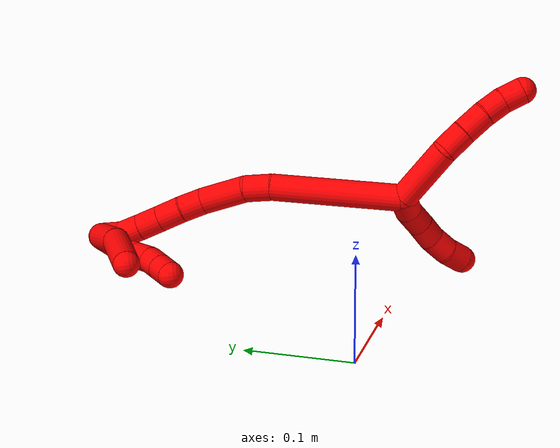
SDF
<sdf version="1.7">
 <world name="default">
  <model name="2">
   <static>0</static>
   <link name="2">
    <collision name="collision-cylinder-e_1_2_8">
     <pose>-0.018435 -0.007077 -0.021804 2.82774 -0.677282 -2.29714</pose>
     <geometry><cylinder><radius>0.0125</radius><length>0.058835</length></cylinder></geometry>
     <surface>
      <friction><ode><mu>1.16</mu><mu2>1.16</mu2><slip1>0</slip1><slip2>0</slip2></ode></friction>
      <contact><ode><kp>1e+06</kp><kd>1</kd><max_vel>0</max_vel><min_depth>0.001</min_depth></ode></contact>
     </surface>
    </collision>
    <visual name="visual-cylinder-e_1_2_8">
     <pose>-0.018435 -0.007077 -0.021804 2.82774 -0.677282 -2.29714</pose>
     <geometry><cylinder><radius>0.0125</radius><length>0.058835</length></cylinder></geometry>
     <material><ambient>1 0 0 1</ambient></material>
    </visual>
    <collision name="collision-cylinder-e_2_8_9">
     <pose>-0.041459 -0.019811 -0.05344 2.61952 -0.384449 -1.2593</pose>
     <geometry><cylinder><radius>0.0125</radius><length>0.02447</length></cylinder></geometry>
     <surface>
      <friction><ode><mu>1.16</mu><mu2>1.16</mu2><slip1>0</slip1><slip2>0</slip2></ode></friction>
      <contact><ode><kp>1e+06</kp><kd>1</kd><max_vel>0</max_vel><min_depth>0.001</min_depth></ode></contact>
     </surface>
    </collision>
    <visual name="visual-cylinder-e_2_8_9">
     <pose>-0.041459 -0.019811 -0.05344 2.61952 -0.384449 -1.2593</pose>
     <geometry><cylinder><radius>0.0125</radius><length>0.02447</length></cylinder></geometry>
     <material><ambient>1 0 0 1</ambient></material>
    </visual>
    <collision name="collision-cylinder-e_3_9_10">
     <pose>-0.050031 -0.031298 -0.073516 2.62412 -0.32586 -1.11158</pose>
     <geometry><cylinder><radius>0.0125</radius><length>0.024886</length></cylinder></geometry>
     <surface>
      <friction><ode><mu>1.16</mu><mu2>1.16</mu2><slip1>0</slip1><slip2>0</slip2></ode></friction>
      <contact><ode><kp>1e+06</kp><kd>1</kd><max_vel>0</max_vel><min_depth>0.001</min_depth></ode></contact>
     </surface>
    </collision>
    <visual name="visual-cylinder-e_3_9_10">
     <pose>-0.050031 -0.031298 -0.073516 2.62412 -0.32586 -1.11158</pose>
     <geometry><cylinder><radius>0.0125</radius><length>0.024886</length></cylinder></geometry>
     <material><ambient>1 0 0 1</ambient></material>
    </visual>
    <collision name="collision-cylinder-e_4_10_11">
     <pose>-0.056044 -0.042187 -0.09284 2.63338 -0.192871 -0.71309</pose>
     <geometry><cylinder><radius>0.0125</radius><length>0.021178</length></cylinder></geometry>
     <surface>
      <friction><ode><mu>1.16</mu><mu2>1.16</mu2><slip1>0</slip1><slip2>0</slip2></ode></friction>
      <contact><ode><kp>1e+06</kp><kd>1</kd><max_vel>0</max_vel><min_depth>0.001</min_depth></ode></contact>
     </surface>
    </collision>
    <visual name="visual-cylinder-e_4_10_11">
     <pose>-0.056044 -0.042187 -0.09284 2.63338 -0.192871 -0.71309</pose>
     <geometry><cylinder><radius>0.0125</radius><length>0.021178</length></cylinder></geometry>
     <material><ambient>1 0 0 1</ambient></material>
    </visual>
    <collision name="collision-cylinder-e_5_11_6">
     <pose>-0.060004 -0.049891 -0.111701 2.87729 -0.188178 -1.2347</pose>
     <geometry><cylinder><radius>0.0125</radius><length>0.020631</length></cylinder></geometry>
     <surface>
      <friction><ode><mu>1.16</mu><mu2>1.16</mu2><slip1>0</slip1><slip2>0</slip2></ode></friction>
      <contact><ode><kp>1e+06</kp><kd>1</kd><max_vel>0</max_vel><min_depth>0.001</min_depth></ode></contact>
     </surface>
    </collision>
    <visual name="visual-cylinder-e_5_11_6">
     <pose>-0.060004 -0.049891 -0.111701 2.87729 -0.188178 -1.2347</pose>
     <geometry><cylinder><radius>0.0125</radius><length>0.020631</length></cylinder></geometry>
     <material><ambient>1 0 0 1</ambient></material>
    </visual>
    <collision name="collision-cylinder-e_1_2_12">
     <pose>0.009802 -0.001395 -0.001402 2.35848 1.37171 2.20712</pose>
     <geometry><cylinder><radius>0.0125</radius><length>0.02</length></cylinder></geometry>
     <surface>
      <friction><ode><mu>1.16</mu><mu2>1.16</mu2><slip1>0</slip1><slip2>0</slip2></ode></friction>
      <contact><ode><kp>1e+06</kp><kd>1</kd><max_vel>0</max_vel><min_depth>0.001</min_depth></ode></contact>
     </surface>
    </collision>
    <visual name="visual-cylinder-e_1_2_12">
     <pose>0.009802 -0.001395 -0.001402 2.35848 1.37171 2.20712</pose>
     <geometry><cylinder><radius>0.0125</radius><length>0.02</length></cylinder></geometry>
     <material><ambient>1 0 0 1</ambient></material>
    </visual>
    <collision name="collision-cylinder-e_2_12_13">
     <pose>0.028669 -0.002758 -0.007028 -3.13391 1.13461 -3.12954</pose>
     <geometry><cylinder><radius>0.0125</radius><length>0.02</length></cylinder></geometry>
     <surface>
      <friction><ode><mu>1.16</mu><mu2>1.16</mu2><slip1>0</slip1><slip2>0</slip2></ode></friction>
      <contact><ode><kp>1e+06</kp><kd>1</kd><max_vel>0</max_vel><min_depth>0.001</min_depth></ode></contact>
     </surface>
    </collision>
    <visual name="visual-cylinder-e_2_12_13">
     <pose>0.028669 -0.002758 -0.007028 -3.13391 1.13461 -3.12954</pose>
     <geometry><cylinder><radius>0.0125</radius><length>0.02</length></cylinder></geometry>
     <material><ambient>1 0 0 1</ambient></material>
    </visual>
    <collision name="collision-cylinder-e_3_13_14">
     <pose>0.046821 -0.002026 -0.015365 -2.97312 1.14046 -2.87976</pose>
     <geometry><cylinder><radius>0.0125</radius><length>0.02</length></cylinder></geometry>
     <surface>
      <friction><ode><mu>1.16</mu><mu2>1.16</mu2><slip1>0</slip1><slip2>0</slip2></ode></friction>
      <contact><ode><kp>1e+06</kp><kd>1</kd><max_vel>0</max_vel><min_depth>0.001</min_depth></ode></contact>
     </surface>
    </collision>
    <visual name="visual-cylinder-e_3_13_14">
     <pose>0.046821 -0.002026 -0.015365 -2.97312 1.14046 -2.87976</pose>
     <geometry><cylinder><radius>0.0125</radius><length>0.02</length></cylinder></geometry>
     <material><ambient>1 0 0 1</ambient></material>
    </visual>
    <collision name="collision-cylinder-e_4_14_15">
     <pose>0.063945 -0.000127 -0.025307 -2.93863 0.933359 -2.74272</pose>
     <geometry><cylinder><radius>0.0125</radius><length>0.02</length></cylinder></geometry>
     <surface>
      <friction><ode><mu>1.16</mu><mu2>1.16</mu2><slip1>0</slip1><slip2>0</slip2></ode></friction>
      <contact><ode><kp>1e+06</kp><kd>1</kd><max_vel>0</max_vel><min_depth>0.001</min_depth></ode></contact>
     </surface>
    </collision>
    <visual name="visual-cylinder-e_4_14_15">
     <pose>0.063945 -0.000127 -0.025307 -2.93863 0.933359 -2.74272</pose>
     <geometry><cylinder><radius>0.0125</radius><length>0.02</length></cylinder></geometry>
     <material><ambient>1 0 0 1</ambient></material>
    </visual>
    <collision name="collision-cylinder-e_5_15_5">
     <pose>0.079567 0.000206 -0.037595 3.00818 0.861066 2.8527</pose>
     <geometry><cylinder><radius>0.0125</radius><length>0.02</length></cylinder></geometry>
     <surface>
      <friction><ode><mu>1.16</mu><mu2>1.16</mu2><slip1>0</slip1><slip2>0</slip2></ode></friction>
      <contact><ode><kp>1e+06</kp><kd>1</kd><max_vel>0</max_vel><min_depth>0.001</min_depth></ode></contact>
     </surface>
    </collision>
    <visual name="visual-cylinder-e_5_15_5">
     <pose>0.079567 0.000206 -0.037595 3.00818 0.861066 2.8527</pose>
     <geometry><cylinder><radius>0.0125</radius><length>0.02</length></cylinder></geometry>
     <material><ambient>1 0 0 1</ambient></material>
    </visual>
    <collision name="collision-cylinder-e_1_2_16">
     <pose>-0.003641 -0.016267 0.059428 0.26719 -0.05902 -0.007934</pose>
     <geometry><cylinder><radius>0.0125</radius><length>0.123443</length></cylinder></geometry>
     <surface>
      <friction><ode><mu>1.16</mu><mu2>1.16</mu2><slip1>0</slip1><slip2>0</slip2></ode></friction>
      <contact><ode><kp>1e+06</kp><kd>1</kd><max_vel>0</max_vel><min_depth>0.001</min_depth></ode></contact>
     </surface>
    </collision>
    <visual name="visual-cylinder-e_1_2_16">
     <pose>-0.003641 -0.016267 0.059428 0.26719 -0.05902 -0.007934</pose>
     <geometry><cylinder><radius>0.0125</radius><length>0.123443</length></cylinder></geometry>
     <material><ambient>1 0 0 1</ambient></material>
    </visual>
    <collision name="collision-cylinder-e_2_16_17">
     <pose>-0.006449 -0.035026 0.131321 0.197209 0.065394 0.006471</pose>
     <geometry><cylinder><radius>0.0125</radius><length>0.025478</length></cylinder></geometry>
     <surface>
      <friction><ode><mu>1.16</mu><mu2>1.16</mu2><slip1>0</slip1><slip2>0</slip2></ode></friction>
      <contact><ode><kp>1e+06</kp><kd>1</kd><max_vel>0</max_vel><min_depth>0.001</min_depth></ode></contact>
     </surface>
    </collision>
    <visual name="visual-cylinder-e_2_16_17">
     <pose>-0.006449 -0.035026 0.131321 0.197209 0.065394 0.006471</pose>
     <geometry><cylinder><radius>0.0125</radius><length>0.025478</length></cylinder></geometry>
     <material><ambient>1 0 0 1</ambient></material>
    </visual>
    <collision name="collision-cylinder-e_3_17_18">
     <pose>0.000947 -0.040795 0.164649 0.155878 0.301342 0.023713</pose>
     <geometry><cylinder><radius>0.0125</radius><length>0.044231</length></cylinder></geometry>
     <surface>
      <friction><ode><mu>1.16</mu><mu2>1.16</mu2><slip1>0</slip1><slip2>0</slip2></ode></friction>
      <contact><ode><kp>1e+06</kp><kd>1</kd><max_vel>0</max_vel><min_depth>0.001</min_depth></ode></contact>
     </surface>
    </collision>
    <visual name="visual-cylinder-e_3_17_18">
     <pose>0.000947 -0.040795 0.164649 0.155878 0.301342 0.023713</pose>
     <geometry><cylinder><radius>0.0125</radius><length>0.044231</length></cylinder></geometry>
     <material><ambient>1 0 0 1</ambient></material>
    </visual>
    <collision name="collision-cylinder-e_4_18_19">
     <pose>0.009792 -0.043071 0.196344 -0.092245 0.206663 -0.009573</pose>
     <geometry><cylinder><radius>0.0125</radius><length>0.022231</length></cylinder></geometry>
     <surface>
      <friction><ode><mu>1.16</mu><mu2>1.16</mu2><slip1>0</slip1><slip2>0</slip2></ode></friction>
      <contact><ode><kp>1e+06</kp><kd>1</kd><max_vel>0</max_vel><min_depth>0.001</min_depth></ode></contact>
     </surface>
    </collision>
    <visual name="visual-cylinder-e_4_18_19">
     <pose>0.009792 -0.043071 0.196344 -0.092245 0.206663 -0.009573</pose>
     <geometry><cylinder><radius>0.0125</radius><length>0.022231</length></cylinder></geometry>
     <material><ambient>1 0 0 1</ambient></material>
    </visual>
    <collision name="collision-cylinder-e_5_19_20">
     <pose>0.015513 -0.041541 0.218069 -0.048436 0.305565 -0.00746</pose>
     <geometry><cylinder><radius>0.0125</radius><length>0.022869</length></cylinder></geometry>
     <surface>
      <friction><ode><mu>1.16</mu><mu2>1.16</mu2><slip1>0</slip1><slip2>0</slip2></ode></friction>
      <contact><ode><kp>1e+06</kp><kd>1</kd><max_vel>0</max_vel><min_depth>0.001</min_depth></ode></contact>
     </surface>
    </collision>
    <visual name="visual-cylinder-e_5_19_20">
     <pose>0.015513 -0.041541 0.218069 -0.048436 0.305565 -0.00746</pose>
     <geometry><cylinder><radius>0.0125</radius><length>0.022869</length></cylinder></geometry>
     <material><ambient>1 0 0 1</ambient></material>
    </visual>
    <collision name="collision-cylinder-e_6_20_21">
     <pose>0.02209 -0.040535 0.23912 -0.04705 0.299186 -0.007093</pose>
     <geometry><cylinder><radius>0.0125</radius><length>0.021288</length></cylinder></geometry>
     <surface>
      <friction><ode><mu>1.16</mu><mu2>1.16</mu2><slip1>0</slip1><slip2>0</slip2></ode></friction>
      <contact><ode><kp>1e+06</kp><kd>1</kd><max_vel>0</max_vel><min_depth>0.001</min_depth></ode></contact>
     </surface>
    </collision>
    <visual name="visual-cylinder-e_6_20_21">
     <pose>0.02209 -0.040535 0.23912 -0.04705 0.299186 -0.007093</pose>
     <geometry><cylinder><radius>0.0125</radius><length>0.021288</length></cylinder></geometry>
     <material><ambient>1 0 0 1</ambient></material>
    </visual>
    <collision name="collision-cylinder-e_7_21_22">
     <pose>0.028105 -0.039814 0.258907 -0.025209 0.290456 -0.003687</pose>
     <geometry><cylinder><radius>0.0125</radius><length>0.020102</length></cylinder></geometry>
     <surface>
      <friction><ode><mu>1.16</mu><mu2>1.16</mu2><slip1>0</slip1><slip2>0</slip2></ode></friction>
      <contact><ode><kp>1e+06</kp><kd>1</kd><max_vel>0</max_vel><min_depth>0.001</min_depth></ode></contact>
     </surface>
    </collision>
    <visual name="visual-cylinder-e_7_21_22">
     <pose>0.028105 -0.039814 0.258907 -0.025209 0.290456 -0.003687</pose>
     <geometry><cylinder><radius>0.0125</radius><length>0.020102</length></cylinder></geometry>
     <material><ambient>1 0 0 1</ambient></material>
    </visual>
    <collision name="collision-cylinder-e_8_22_1">
     <pose>0.032125 -0.041835 0.278393 0.225728 0.112288 0.012741</pose>
     <geometry><cylinder><radius>0.0125</radius><length>0.020359</length></cylinder></geometry>
     <surface>
      <friction><ode><mu>1.16</mu><mu2>1.16</mu2><slip1>0</slip1><slip2>0</slip2></ode></friction>
      <contact><ode><kp>1e+06</kp><kd>1</kd><max_vel>0</max_vel><min_depth>0.001</min_depth></ode></contact>
     </surface>
    </collision>
    <visual name="visual-cylinder-e_8_22_1">
     <pose>0.032125 -0.041835 0.278393 0.225728 0.112288 0.012741</pose>
     <geometry><cylinder><radius>0.0125</radius><length>0.020359</length></cylinder></geometry>
     <material><ambient>1 0 0 1</ambient></material>
    </visual>
    <collision name="collision-cylinder-e_1_1_23">
     <pose>0.023566 -0.028596 0.27906 -2.106 -0.493723 0.833008</pose>
     <geometry><cylinder><radius>0.0125</radius><length>0.040935</length></cylinder></geometry>
     <surface>
      <friction><ode><mu>1.16</mu><mu2>1.16</mu2><slip1>0</slip1><slip2>0</slip2></ode></friction>
      <contact><ode><kp>1e+06</kp><kd>1</kd><max_vel>0</max_vel><min_depth>0.001</min_depth></ode></contact>
     </surface>
    </collision>
    <visual name="visual-cylinder-e_1_1_23">
     <pose>0.023566 -0.028596 0.27906 -2.106 -0.493723 0.833008</pose>
     <geometry><cylinder><radius>0.0125</radius><length>0.040935</length></cylinder></geometry>
     <material><ambient>1 0 0 1</ambient></material>
    </visual>
    <collision name="collision-cylinder-e_2_23_4">
     <pose>0.004286 0.013908 0.262705 -1.8301 -0.330363 0.426779</pose>
     <geometry><cylinder><radius>0.0125</radius><length>0.059065</length></cylinder></geometry>
     <surface>
      <friction><ode><mu>1.16</mu><mu2>1.16</mu2><slip1>0</slip1><slip2>0</slip2></ode></friction>
      <contact><ode><kp>1e+06</kp><kd>1</kd><max_vel>0</max_vel><min_depth>0.001</min_depth></ode></contact>
     </surface>
    </collision>
    <visual name="visual-cylinder-e_2_23_4">
     <pose>0.004286 0.013908 0.262705 -1.8301 -0.330363 0.426779</pose>
     <geometry><cylinder><radius>0.0125</radius><length>0.059065</length></cylinder></geometry>
     <material><ambient>1 0 0 1</ambient></material>
    </visual>
    <collision name="collision-cylinder-e_1_1_24">
     <pose>0.036882 -0.038873 0.280532 -2.54647 0.370086 -1.09604</pose>
     <geometry><cylinder><radius>0.0125</radius><length>0.02</length></cylinder></geometry>
     <surface>
      <friction><ode><mu>1.16</mu><mu2>1.16</mu2><slip1>0</slip1><slip2>0</slip2></ode></friction>
      <contact><ode><kp>1e+06</kp><kd>1</kd><max_vel>0</max_vel><min_depth>0.001</min_depth></ode></contact>
     </surface>
    </collision>
    <visual name="visual-cylinder-e_1_1_24">
     <pose>0.036882 -0.038873 0.280532 -2.54647 0.370086 -1.09604</pose>
     <geometry><cylinder><radius>0.0125</radius><length>0.02</length></cylinder></geometry>
     <material><ambient>1 0 0 1</ambient></material>
    </visual>
    <collision name="collision-cylinder-e_2_24_25">
     <pose>0.041156 -0.027203 0.265192 -2.43968 0.065709 -0.179062</pose>
     <geometry><cylinder><radius>0.0125</radius><length>0.02</length></cylinder></geometry>
     <surface>
      <friction><ode><mu>1.16</mu><mu2>1.16</mu2><slip1>0</slip1><slip2>0</slip2></ode></friction>
      <contact><ode><kp>1e+06</kp><kd>1</kd><max_vel>0</max_vel><min_depth>0.001</min_depth></ode></contact>
     </surface>
    </collision>
    <visual name="visual-cylinder-e_2_24_25">
     <pose>0.041156 -0.027203 0.265192 -2.43968 0.065709 -0.179062</pose>
     <geometry><cylinder><radius>0.0125</radius><length>0.02</length></cylinder></geometry>
     <material><ambient>1 0 0 1</ambient></material>
    </visual>
    <collision name="collision-cylinder-e_3_25_26">
     <pose>0.04027 -0.014383 0.250026 -2.43994 -0.154873 0.41785</pose>
     <geometry><cylinder><radius>0.0125</radius><length>0.02</length></cylinder></geometry>
     <surface>
      <friction><ode><mu>1.16</mu><mu2>1.16</mu2><slip1>0</slip1><slip2>0</slip2></ode></friction>
      <contact><ode><kp>1e+06</kp><kd>1</kd><max_vel>0</max_vel><min_depth>0.001</min_depth></ode></contact>
     </surface>
    </collision>
    <visual name="visual-cylinder-e_3_25_26">
     <pose>0.04027 -0.014383 0.250026 -2.43994 -0.154873 0.41785</pose>
     <geometry><cylinder><radius>0.0125</radius><length>0.02</length></cylinder></geometry>
     <material><ambient>1 0 0 1</ambient></material>
    </visual>
    <collision name="collision-cylinder-e_4_26_27">
     <pose>0.036813 0.000288 0.23723 -2.13518 -0.192637 0.347495</pose>
     <geometry><cylinder><radius>0.0125</radius><length>0.02</length></cylinder></geometry>
     <surface>
      <friction><ode><mu>1.16</mu><mu2>1.16</mu2><slip1>0</slip1><slip2>0</slip2></ode></friction>
      <contact><ode><kp>1e+06</kp><kd>1</kd><max_vel>0</max_vel><min_depth>0.001</min_depth></ode></contact>
     </surface>
    </collision>
    <visual name="visual-cylinder-e_4_26_27">
     <pose>0.036813 0.000288 0.23723 -2.13518 -0.192637 0.347495</pose>
     <geometry><cylinder><radius>0.0125</radius><length>0.02</length></cylinder></geometry>
     <material><ambient>1 0 0 1</ambient></material>
    </visual>
    <collision name="collision-cylinder-e_5_27_3">
     <pose>0.032579 0.016936 0.226999 -2.10838 -0.234123 0.408269</pose>
     <geometry><cylinder><radius>0.0125</radius><length>0.02</length></cylinder></geometry>
     <surface>
      <friction><ode><mu>1.16</mu><mu2>1.16</mu2><slip1>0</slip1><slip2>0</slip2></ode></friction>
      <contact><ode><kp>1e+06</kp><kd>1</kd><max_vel>0</max_vel><min_depth>0.001</min_depth></ode></contact>
     </surface>
    </collision>
    <visual name="visual-cylinder-e_5_27_3">
     <pose>0.032579 0.016936 0.226999 -2.10838 -0.234123 0.408269</pose>
     <geometry><cylinder><radius>0.0125</radius><length>0.02</length></cylinder></geometry>
     <material><ambient>1 0 0 1</ambient></material>
    </visual>
    <collision name="collision-sphere-3">
     <pose>0.030259 0.025291 0.222018 0 -0 0</pose>
     <geometry><sphere><radius>0.0125</radius></sphere></geometry>
     <surface>
      <friction><ode><mu>1.16</mu><mu2>1.16</mu2><slip1>0</slip1><slip2>0</slip2></ode></friction>
      <contact><ode><kp>1e+06</kp><kd>1</kd><max_vel>0</max_vel><min_depth>0.001</min_depth></ode></contact>
     </surface>
    </collision>
    <visual name="visual-sphere-3">
     <pose>0.030259 0.025291 0.222018 0 -0 0</pose>
     <geometry><sphere><radius>0.0125</radius></sphere></geometry>
     <material><ambient>1 0 0 1</ambient></material>
    </visual>
    <collision name="collision-sphere-27">
     <pose>0.034898 0.00858 0.23198 0 -0 0</pose>
     <geometry><sphere><radius>0.0125</radius></sphere></geometry>
     <surface>
      <friction><ode><mu>1.16</mu><mu2>1.16</mu2><slip1>0</slip1><slip2>0</slip2></ode></friction>
      <contact><ode><kp>1e+06</kp><kd>1</kd><max_vel>0</max_vel><min_depth>0.001</min_depth></ode></contact>
     </surface>
    </collision>
    <visual name="visual-sphere-27">
     <pose>0.034898 0.00858 0.23198 0 -0 0</pose>
     <geometry><sphere><radius>0.0125</radius></sphere></geometry>
     <material><ambient>1 0 0 1</ambient></material>
    </visual>
    <collision name="collision-sphere-26">
     <pose>0.038727 -0.008005 0.24248 0 -0 0</pose>
     <geometry><sphere><radius>0.0125</radius></sphere></geometry>
     <surface>
      <friction><ode><mu>1.16</mu><mu2>1.16</mu2><slip1>0</slip1><slip2>0</slip2></ode></friction>
      <contact><ode><kp>1e+06</kp><kd>1</kd><max_vel>0</max_vel><min_depth>0.001</min_depth></ode></contact>
     </surface>
    </collision>
    <visual name="visual-sphere-26">
     <pose>0.038727 -0.008005 0.24248 0 -0 0</pose>
     <geometry><sphere><radius>0.0125</radius></sphere></geometry>
     <material><ambient>1 0 0 1</ambient></material>
    </visual>
    <collision name="collision-sphere-25">
     <pose>0.041812 -0.02076 0.257572 0 -0 0</pose>
     <geometry><sphere><radius>0.0125</radius></sphere></geometry>
     <surface>
      <friction><ode><mu>1.16</mu><mu2>1.16</mu2><slip1>0</slip1><slip2>0</slip2></ode></friction>
      <contact><ode><kp>1e+06</kp><kd>1</kd><max_vel>0</max_vel><min_depth>0.001</min_depth></ode></contact>
     </surface>
    </collision>
    <visual name="visual-sphere-25">
     <pose>0.041812 -0.02076 0.257572 0 -0 0</pose>
     <geometry><sphere><radius>0.0125</radius></sphere></geometry>
     <material><ambient>1 0 0 1</ambient></material>
    </visual>
    <collision name="collision-sphere-24">
     <pose>0.040499 -0.033646 0.272812 0 -0 0</pose>
     <geometry><sphere><radius>0.0125</radius></sphere></geometry>
     <surface>
      <friction><ode><mu>1.16</mu><mu2>1.16</mu2><slip1>0</slip1><slip2>0</slip2></ode></friction>
      <contact><ode><kp>1e+06</kp><kd>1</kd><max_vel>0</max_vel><min_depth>0.001</min_depth></ode></contact>
     </surface>
    </collision>
    <visual name="visual-sphere-24">
     <pose>0.040499 -0.033646 0.272812 0 -0 0</pose>
     <geometry><sphere><radius>0.0125</radius></sphere></geometry>
     <material><ambient>1 0 0 1</ambient></material>
    </visual>
    <collision name="collision-sphere-4">
     <pose>-0.005294 0.04091 0.255542 0 -0 0</pose>
     <geometry><sphere><radius>0.0125</radius></sphere></geometry>
     <surface>
      <friction><ode><mu>1.16</mu><mu2>1.16</mu2><slip1>0</slip1><slip2>0</slip2></ode></friction>
      <contact><ode><kp>1e+06</kp><kd>1</kd><max_vel>0</max_vel><min_depth>0.001</min_depth></ode></contact>
     </surface>
    </collision>
    <visual name="visual-sphere-4">
     <pose>-0.005294 0.04091 0.255542 0 -0 0</pose>
     <geometry><sphere><radius>0.0125</radius></sphere></geometry>
     <material><ambient>1 0 0 1</ambient></material>
    </visual>
    <collision name="collision-sphere-23">
     <pose>0.013866 -0.013093 0.269868 0 -0 0</pose>
     <geometry><sphere><radius>0.0125</radius></sphere></geometry>
     <surface>
      <friction><ode><mu>1.16</mu><mu2>1.16</mu2><slip1>0</slip1><slip2>0</slip2></ode></friction>
      <contact><ode><kp>1e+06</kp><kd>1</kd><max_vel>0</max_vel><min_depth>0.001</min_depth></ode></contact>
     </surface>
    </collision>
    <visual name="visual-sphere-23">
     <pose>0.013866 -0.013093 0.269868 0 -0 0</pose>
     <geometry><sphere><radius>0.0125</radius></sphere></geometry>
     <material><ambient>1 0 0 1</ambient></material>
    </visual>
    <collision name="collision-sphere-1">
     <pose>0.033265 -0.044099 0.288252 0 -0 0</pose>
     <geometry><sphere><radius>0.0125</radius></sphere></geometry>
     <surface>
      <friction><ode><mu>1.16</mu><mu2>1.16</mu2><slip1>0</slip1><slip2>0</slip2></ode></friction>
      <contact><ode><kp>1e+06</kp><kd>1</kd><max_vel>0</max_vel><min_depth>0.001</min_depth></ode></contact>
     </surface>
    </collision>
    <visual name="visual-sphere-1">
     <pose>0.033265 -0.044099 0.288252 0 -0 0</pose>
     <geometry><sphere><radius>0.0125</radius></sphere></geometry>
     <material><ambient>1 0 0 1</ambient></material>
    </visual>
    <collision name="collision-sphere-22">
     <pose>0.030984 -0.039571 0.268534 0 -0 0</pose>
     <geometry><sphere><radius>0.0125</radius></sphere></geometry>
     <surface>
      <friction><ode><mu>1.16</mu><mu2>1.16</mu2><slip1>0</slip1><slip2>0</slip2></ode></friction>
      <contact><ode><kp>1e+06</kp><kd>1</kd><max_vel>0</max_vel><min_depth>0.001</min_depth></ode></contact>
     </surface>
    </collision>
    <visual name="visual-sphere-22">
     <pose>0.030984 -0.039571 0.268534 0 -0 0</pose>
     <geometry><sphere><radius>0.0125</radius></sphere></geometry>
     <material><ambient>1 0 0 1</ambient></material>
    </visual>
    <collision name="collision-sphere-21">
     <pose>0.025227 -0.040057 0.24928 0 -0 0</pose>
     <geometry><sphere><radius>0.0125</radius></sphere></geometry>
     <surface>
      <friction><ode><mu>1.16</mu><mu2>1.16</mu2><slip1>0</slip1><slip2>0</slip2></ode></friction>
      <contact><ode><kp>1e+06</kp><kd>1</kd><max_vel>0</max_vel><min_depth>0.001</min_depth></ode></contact>
     </surface>
    </collision>
    <visual name="visual-sphere-21">
     <pose>0.025227 -0.040057 0.24928 0 -0 0</pose>
     <geometry><sphere><radius>0.0125</radius></sphere></geometry>
     <material><ambient>1 0 0 1</ambient></material>
    </visual>
    <collision name="collision-sphere-6">
     <pose>-0.061933 -0.052539 -0.121482 0 -0 0</pose>
     <geometry><sphere><radius>0.0125</radius></sphere></geometry>
     <surface>
      <friction><ode><mu>1.16</mu><mu2>1.16</mu2><slip1>0</slip1><slip2>0</slip2></ode></friction>
      <contact><ode><kp>1e+06</kp><kd>1</kd><max_vel>0</max_vel><min_depth>0.001</min_depth></ode></contact>
     </surface>
    </collision>
    <visual name="visual-sphere-6">
     <pose>-0.061933 -0.052539 -0.121482 0 -0 0</pose>
     <geometry><sphere><radius>0.0125</radius></sphere></geometry>
     <material><ambient>1 0 0 1</ambient></material>
    </visual>
    <collision name="collision-sphere-11">
     <pose>-0.058074 -0.047244 -0.101919 0 -0 0</pose>
     <geometry><sphere><radius>0.0125</radius></sphere></geometry>
     <surface>
      <friction><ode><mu>1.16</mu><mu2>1.16</mu2><slip1>0</slip1><slip2>0</slip2></ode></friction>
      <contact><ode><kp>1e+06</kp><kd>1</kd><max_vel>0</max_vel><min_depth>0.001</min_depth></ode></contact>
     </surface>
    </collision>
    <visual name="visual-sphere-11">
     <pose>-0.058074 -0.047244 -0.101919 0 -0 0</pose>
     <geometry><sphere><radius>0.0125</radius></sphere></geometry>
     <material><ambient>1 0 0 1</ambient></material>
    </visual>
    <collision name="collision-sphere-10">
     <pose>-0.054015 -0.03713 -0.083761 0 -0 0</pose>
     <geometry><sphere><radius>0.0125</radius></sphere></geometry>
     <surface>
      <friction><ode><mu>1.16</mu><mu2>1.16</mu2><slip1>0</slip1><slip2>0</slip2></ode></friction>
      <contact><ode><kp>1e+06</kp><kd>1</kd><max_vel>0</max_vel><min_depth>0.001</min_depth></ode></contact>
     </surface>
    </collision>
    <visual name="visual-sphere-10">
     <pose>-0.054015 -0.03713 -0.083761 0 -0 0</pose>
     <geometry><sphere><radius>0.0125</radius></sphere></geometry>
     <material><ambient>1 0 0 1</ambient></material>
    </visual>
    <collision name="collision-sphere-9">
     <pose>-0.046048 -0.025467 -0.063271 0 -0 0</pose>
     <geometry><sphere><radius>0.0125</radius></sphere></geometry>
     <surface>
      <friction><ode><mu>1.16</mu><mu2>1.16</mu2><slip1>0</slip1><slip2>0</slip2></ode></friction>
      <contact><ode><kp>1e+06</kp><kd>1</kd><max_vel>0</max_vel><min_depth>0.001</min_depth></ode></contact>
     </surface>
    </collision>
    <visual name="visual-sphere-9">
     <pose>-0.046048 -0.025467 -0.063271 0 -0 0</pose>
     <geometry><sphere><radius>0.0125</radius></sphere></geometry>
     <material><ambient>1 0 0 1</ambient></material>
    </visual>
    <collision name="collision-sphere-2">
     <geometry><sphere><radius>0.0125</radius></sphere></geometry>
     <surface>
      <friction><ode><mu>1.16</mu><mu2>1.16</mu2><slip1>0</slip1><slip2>0</slip2></ode></friction>
      <contact><ode><kp>1e+06</kp><kd>1</kd><max_vel>0</max_vel><min_depth>0.001</min_depth></ode></contact>
     </surface>
    </collision>
    <visual name="visual-sphere-2">
     <geometry><sphere><radius>0.0125</radius></sphere></geometry>
     <material><ambient>1 0 0 1</ambient></material>
    </visual>
    <collision name="collision-sphere-19">
     <pose>0.012073 -0.042069 0.207177 0 -0 0</pose>
     <geometry><sphere><radius>0.0125</radius></sphere></geometry>
     <surface>
      <friction><ode><mu>1.16</mu><mu2>1.16</mu2><slip1>0</slip1><slip2>0</slip2></ode></friction>
      <contact><ode><kp>1e+06</kp><kd>1</kd><max_vel>0</max_vel><min_depth>0.001</min_depth></ode></contact>
     </surface>
    </collision>
    <visual name="visual-sphere-19">
     <pose>0.012073 -0.042069 0.207177 0 -0 0</pose>
     <geometry><sphere><radius>0.0125</radius></sphere></geometry>
     <material><ambient>1 0 0 1</ambient></material>
    </visual>
    <collision name="collision-sphere-8">
     <pose>-0.03687 -0.014155 -0.043609 0 -0 0</pose>
     <geometry><sphere><radius>0.0125</radius></sphere></geometry>
     <surface>
      <friction><ode><mu>1.16</mu><mu2>1.16</mu2><slip1>0</slip1><slip2>0</slip2></ode></friction>
      <contact><ode><kp>1e+06</kp><kd>1</kd><max_vel>0</max_vel><min_depth>0.001</min_depth></ode></contact>
     </surface>
    </collision>
    <visual name="visual-sphere-8">
     <pose>-0.03687 -0.014155 -0.043609 0 -0 0</pose>
     <geometry><sphere><radius>0.0125</radius></sphere></geometry>
     <material><ambient>1 0 0 1</ambient></material>
    </visual>
    <collision name="collision-sphere-12">
     <pose>0.019605 -0.002791 -0.002803 0 -0 0</pose>
     <geometry><sphere><radius>0.0125</radius></sphere></geometry>
     <surface>
      <friction><ode><mu>1.16</mu><mu2>1.16</mu2><slip1>0</slip1><slip2>0</slip2></ode></friction>
      <contact><ode><kp>1e+06</kp><kd>1</kd><max_vel>0</max_vel><min_depth>0.001</min_depth></ode></contact>
     </surface>
    </collision>
    <visual name="visual-sphere-12">
     <pose>0.019605 -0.002791 -0.002803 0 -0 0</pose>
     <geometry><sphere><radius>0.0125</radius></sphere></geometry>
     <material><ambient>1 0 0 1</ambient></material>
    </visual>
    <collision name="collision-sphere-13">
     <pose>0.037732 -0.002726 -0.011253 0 -0 0</pose>
     <geometry><sphere><radius>0.0125</radius></sphere></geometry>
     <surface>
      <friction><ode><mu>1.16</mu><mu2>1.16</mu2><slip1>0</slip1><slip2>0</slip2></ode></friction>
      <contact><ode><kp>1e+06</kp><kd>1</kd><max_vel>0</max_vel><min_depth>0.001</min_depth></ode></contact>
     </surface>
    </collision>
    <visual name="visual-sphere-13">
     <pose>0.037732 -0.002726 -0.011253 0 -0 0</pose>
     <geometry><sphere><radius>0.0125</radius></sphere></geometry>
     <material><ambient>1 0 0 1</ambient></material>
    </visual>
    <collision name="collision-sphere-14">
     <pose>0.055909 -0.001327 -0.019478 0 -0 0</pose>
     <geometry><sphere><radius>0.0125</radius></sphere></geometry>
     <surface>
      <friction><ode><mu>1.16</mu><mu2>1.16</mu2><slip1>0</slip1><slip2>0</slip2></ode></friction>
      <contact><ode><kp>1e+06</kp><kd>1</kd><max_vel>0</max_vel><min_depth>0.001</min_depth></ode></contact>
     </surface>
    </collision>
    <visual name="visual-sphere-14">
     <pose>0.055909 -0.001327 -0.019478 0 -0 0</pose>
     <geometry><sphere><radius>0.0125</radius></sphere></geometry>
     <material><ambient>1 0 0 1</ambient></material>
    </visual>
    <collision name="collision-sphere-15">
     <pose>0.071981 0.001073 -0.031137 0 -0 0</pose>
     <geometry><sphere><radius>0.0125</radius></sphere></geometry>
     <surface>
      <friction><ode><mu>1.16</mu><mu2>1.16</mu2><slip1>0</slip1><slip2>0</slip2></ode></friction>
      <contact><ode><kp>1e+06</kp><kd>1</kd><max_vel>0</max_vel><min_depth>0.001</min_depth></ode></contact>
     </surface>
    </collision>
    <visual name="visual-sphere-15">
     <pose>0.071981 0.001073 -0.031137 0 -0 0</pose>
     <geometry><sphere><radius>0.0125</radius></sphere></geometry>
     <material><ambient>1 0 0 1</ambient></material>
    </visual>
    <collision name="collision-sphere-5">
     <pose>0.087152 -0.000661 -0.044053 0 -0 0</pose>
     <geometry><sphere><radius>0.0125</radius></sphere></geometry>
     <surface>
      <friction><ode><mu>1.16</mu><mu2>1.16</mu2><slip1>0</slip1><slip2>0</slip2></ode></friction>
      <contact><ode><kp>1e+06</kp><kd>1</kd><max_vel>0</max_vel><min_depth>0.001</min_depth></ode></contact>
     </surface>
    </collision>
    <visual name="visual-sphere-5">
     <pose>0.087152 -0.000661 -0.044053 0 -0 0</pose>
     <geometry><sphere><radius>0.0125</radius></sphere></geometry>
     <material><ambient>1 0 0 1</ambient></material>
    </visual>
    <collision name="collision-sphere-16">
     <pose>-0.007281 -0.032535 0.118855 0 -0 0</pose>
     <geometry><sphere><radius>0.0125</radius></sphere></geometry>
     <surface>
      <friction><ode><mu>1.16</mu><mu2>1.16</mu2><slip1>0</slip1><slip2>0</slip2></ode></friction>
      <contact><ode><kp>1e+06</kp><kd>1</kd><max_vel>0</max_vel><min_depth>0.001</min_depth></ode></contact>
     </surface>
    </collision>
    <visual name="visual-sphere-16">
     <pose>-0.007281 -0.032535 0.118855 0 -0 0</pose>
     <geometry><sphere><radius>0.0125</radius></sphere></geometry>
     <material><ambient>1 0 0 1</ambient></material>
    </visual>
    <collision name="collision-sphere-17">
     <pose>-0.005616 -0.037516 0.143786 0 -0 0</pose>
     <geometry><sphere><radius>0.0125</radius></sphere></geometry>
     <surface>
      <friction><ode><mu>1.16</mu><mu2>1.16</mu2><slip1>0</slip1><slip2>0</slip2></ode></friction>
      <contact><ode><kp>1e+06</kp><kd>1</kd><max_vel>0</max_vel><min_depth>0.001</min_depth></ode></contact>
     </surface>
    </collision>
    <visual name="visual-sphere-17">
     <pose>-0.005616 -0.037516 0.143786 0 -0 0</pose>
     <geometry><sphere><radius>0.0125</radius></sphere></geometry>
     <material><ambient>1 0 0 1</ambient></material>
    </visual>
    <collision name="collision-sphere-18">
     <pose>0.007511 -0.044074 0.185512 0 -0 0</pose>
     <geometry><sphere><radius>0.0125</radius></sphere></geometry>
     <surface>
      <friction><ode><mu>1.16</mu><mu2>1.16</mu2><slip1>0</slip1><slip2>0</slip2></ode></friction>
      <contact><ode><kp>1e+06</kp><kd>1</kd><max_vel>0</max_vel><min_depth>0.001</min_depth></ode></contact>
     </surface>
    </collision>
    <visual name="visual-sphere-18">
     <pose>0.007511 -0.044074 0.185512 0 -0 0</pose>
     <geometry><sphere><radius>0.0125</radius></sphere></geometry>
     <material><ambient>1 0 0 1</ambient></material>
    </visual>
    <collision name="collision-sphere-20">
     <pose>0.018953 -0.041013 0.22896 0 -0 0</pose>
     <geometry><sphere><radius>0.0125</radius></sphere></geometry>
     <surface>
      <friction><ode><mu>1.16</mu><mu2>1.16</mu2><slip1>0</slip1><slip2>0</slip2></ode></friction>
      <contact><ode><kp>1e+06</kp><kd>1</kd><max_vel>0</max_vel><min_depth>0.001</min_depth></ode></contact>
     </surface>
    </collision>
    <visual name="visual-sphere-20">
     <pose>0.018953 -0.041013 0.22896 0 -0 0</pose>
     <geometry><sphere><radius>0.0125</radius></sphere></geometry>
     <material><ambient>1 0 0 1</ambient></material>
    </visual>
    <inertial>
     <pose>0.007292 -0.019288 0.113325 0 -0 0</pose>
     <mass>0.75</mass>
     <inertia>
      <ixx>0.000193</ixx>
      <ixy>0</ixy>
      <ixz>0</ixz>
      <iyy>0.000188</iyy>
      <iyz>0</iyz>
      <izz>4.8e-05</izz>
     </inertia>
    </inertial>
   </link>
   <pose>0.181074 0.001641 0.084586 -1.99453 1.17237 -0.145289</pose>
  </model>
 </world>
</sdf>
